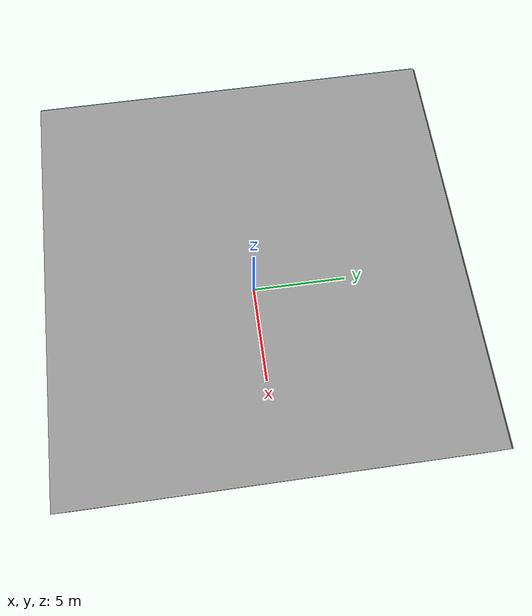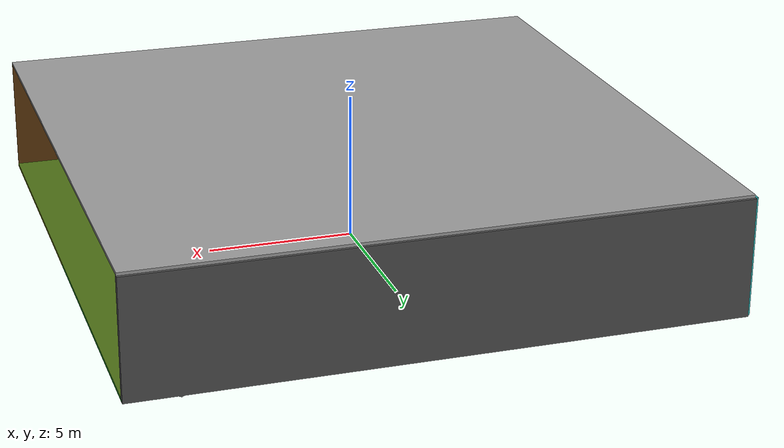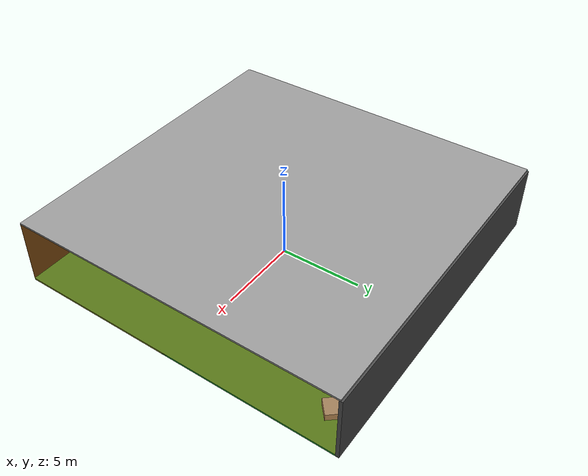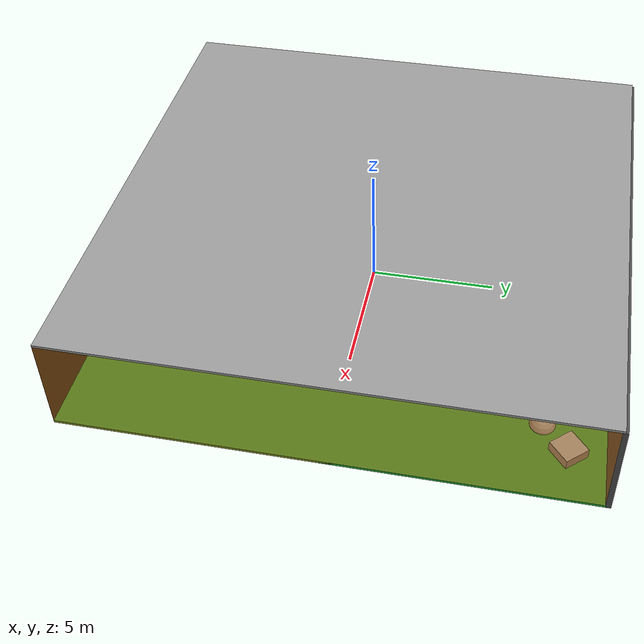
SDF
<sdf version="1.4">
 <world name="default">
  <physics type="ode">
   <max_step_size>0.001</max_step_size>
   <real_time_factor>1</real_time_factor>
   <real_time_update_rate>1000</real_time_update_rate>
   <gravity>0 0 -9.8</gravity>
  </physics>
  <scene><ambient>0.4 0.4 0.4 1</ambient><background>0.7 0.7 0.7 1</background><shadows>1</shadows></scene>
  <model name="Surrounding">
   <static>1</static>
   <link name="Ceiling">
    <collision name="Ceiling_Collision"><geometry><box><size>20 20 0.1</size></box></geometry></collision>
    <visual name="Ceiling_Visual">
     <geometry><box><size>20 20 0.1</size></box></geometry>
     <material>
      <script><uri>file://media/materials/scripts/gazebo.material</uri><name>Gazebo/Grey</name></script>
     </material>
    </visual>
    <pose>0 0 4.05 0 0 0</pose>
   </link>
   <link name="Wall_South">
    <collision name="Wall_South_Collision">
     <geometry><box><size>20 0 4</size></box></geometry>
     <pose>0 0 2 0 -0 0</pose>
    </collision>
    <visual name="Wall_South_Visual">
     <pose>0 0 2 0 -0 0</pose>
     <geometry><box><size>20 0 4</size></box></geometry>
     <material>
      <script><uri>file://media/materials/scripts/gazebo.material</uri><name>Gazebo/Black</name></script>
     </material>
    </visual>
    <velocity_decay><linear>0</linear><angular>0</angular></velocity_decay>
    <pose>0 -10 0 0 -0 0</pose>
   </link>
   <link name="Wall_East">
    <collision name="Wall_21_Collision">
     <geometry><box><size>20 0 4</size></box></geometry>
     <pose>0 0 2 0 -0 0</pose>
    </collision>
    <visual name="Wall_21_Visual">
     <pose>0 0 2 0 -0 0</pose>
     <geometry><box><size>20 0 4</size></box></geometry>
     <material>
      <script>
       <uri>file://media/materials/scripts/gazebo.material</uri>
       <name>Gazebo/OrangeTransparent</name>
      </script>
     </material>
    </visual>
    <velocity_decay><linear>0</linear><angular>0</angular></velocity_decay>
    <pose>10 0 0 0 -0 1.5708</pose>
   </link>
   <link name="Wall_North">
    <collision name="Wall_22_Collision">
     <geometry><box><size>20 0.2 4</size></box></geometry>
     <pose>0 0 2 0 -0 0</pose>
    </collision>
    <visual name="Wall_22_Visual">
     <pose>0 0 2 0 -0 0</pose>
     <geometry><box><size>20 0.2 4</size></box></geometry>
     <material>
      <script><uri>file://media/materials/scripts/gazebo.material</uri><name>Gazebo/Road</name></script>
     </material>
    </visual>
    <velocity_decay><linear>0</linear><angular>0</angular></velocity_decay>
    <pose>0 10 0 0 -0 0</pose>
   </link>
   <link name="Wall_West">
    <collision name="Wall_23_Collision">
     <geometry><box><size>20 0.2 4</size></box></geometry>
     <pose>0 0 2 0 -0 0</pose>
    </collision>
    <visual name="Wall_23_Visual">
     <pose>0 0 2 0 -0 0</pose>
     <geometry><box><size>20 0.2 4</size></box></geometry>
     <material>
      <script>
       <uri>file://media/materials/scripts/gazebo.material</uri>
       <name>Gazebo/TurquoiseGlowOutline</name>
      </script>
     </material>
    </visual>
    <velocity_decay><linear>0</linear><angular>0</angular></velocity_decay>
    <pose>-10 0 0 0 0 -1.5708</pose>
   </link>
   <link name="Ground_link">
    <collision name="collision">
     <pose>0 0 .05 0 -0 0</pose>
     <geometry><box><size>20 20 0.1</size></box></geometry>
    </collision>
    <visual name="visual">
     <pose>0 0 .05 0 -0 0</pose>
     <geometry><box><size>20 20 0.1</size></box></geometry>
     <material>
      <script><uri>file://media/materials/scripts/gazebo.material</uri><name>Gazebo/GreenGlow</name></script>
     </material>
    </visual>
   </link>
   <static>1</static>
  </model>
  <spherical_coordinates>
   <surface_model>EARTH_WGS84</surface_model>
   <latitude_deg>0</latitude_deg>
   <longitude_deg>0</longitude_deg>
   <elevation>0</elevation>
   <heading_deg>0</heading_deg>
  </spherical_coordinates>
  <light name="lightball_0" type="diffuse">
   <diffuse>0.8 0.8 0.8 1</diffuse>
   <specular>0.2 0.2 0.2 1</specular>
   <attenuation>
    <range>100</range>
    <constant>0.7</constant>
    <linear>0.01</linear>
    <quadratic>0.001</quadratic>
   </attenuation>
   <direction>-0.5 0.1 -0.9</direction>
   <pose>7.09282170126 1.10859728628 1.7228609295 0 0 0</pose>
  </light>
  <light name="lightball_1" type="diffuse">
   <diffuse>0.8 0.8 0.8 1</diffuse>
   <specular>0.2 0.2 0.2 1</specular>
   <attenuation>
    <range>100</range>
    <constant>0.7</constant>
    <linear>0.01</linear>
    <quadratic>0.001</quadratic>
   </attenuation>
   <direction>-0.5 0.1 -0.9</direction>
   <pose>3.57493034118 1.75824973219 0.648054832144 0 0 0</pose>
  </light>
  <light name="lightball_2" type="diffuse">
   <diffuse>0.8 0.8 0.8 1</diffuse>
   <specular>0.2 0.2 0.2 1</specular>
   <attenuation>
    <range>100</range>
    <constant>0.7</constant>
    <linear>0.01</linear>
    <quadratic>0.001</quadratic>
   </attenuation>
   <direction>-0.5 0.1 -0.9</direction>
   <pose>4.11919244327 9.38439095832 3.41573594292 0 0 0</pose>
  </light>
  <light name="lightball_3" type="diffuse">
   <diffuse>0.8 0.8 0.8 1</diffuse>
   <specular>0.2 0.2 0.2 1</specular>
   <attenuation>
    <range>100</range>
    <constant>0.7</constant>
    <linear>0.01</linear>
    <quadratic>0.001</quadratic>
   </attenuation>
   <direction>-0.5 0.1 -0.9</direction>
   <pose>6.57181688377 8.92708129963 2.31707915586 0 0 0</pose>
  </light>
  <light name="lightball_4" type="diffuse">
   <diffuse>0.8 0.8 0.8 1</diffuse>
   <specular>0.2 0.2 0.2 1</specular>
   <attenuation>
    <range>100</range>
    <constant>0.7</constant>
    <linear>0.01</linear>
    <quadratic>0.001</quadratic>
   </attenuation>
   <direction>-0.5 0.1 -0.9</direction>
   <pose>-2.25781192875 -3.29249006121 2.07471397981 0 0 0</pose>
  </light>
  <include><uri>model://table</uri><pose>-3.95169832243 -8.53798032691 0 0 0 2.83514053216</pose></include>
  <include><uri>model://table</uri><pose>-0.833957845726 8.0299488547 0 0 0 1.65243175593</pose></include>
  <include><uri>model://cabinet</uri><pose>5.51302921286 -5.20688477794 0 0 0 2.0361558552</pose></include>
  <include>
   <uri>model://textured_shapes</uri>
   <pose>6.88430240487 7.5442948438 0 0 0 2.28783221251</pose>
  </include>
 </world>
</sdf>

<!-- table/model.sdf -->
<sdf version="1.5">
  <model name="table">
    <static>true</static>
    <link name="link">
      <collision name="surface">
        <pose>0 0 1.0 0 0 0</pose>
        <geometry>
          <box>
            <size>1.5 0.8 0.03</size>
          </box>
        </geometry>
        <surface>
          <friction>
            <ode>
              <mu>0.6</mu>
              <mu2>0.6</mu2>
            </ode>
          </friction>
        </surface>
      </collision>
      <visual name="visual1">
        <pose>0 0 1.0 0 0 0</pose>
        <geometry>
          <box>
            <size>1.5 0.8 0.03</size>
          </box>
        </geometry>
        <material>
          <script>
            <uri>model://media/materials/scripts/gazebo.material</uri>
            <name>Gazebo/Wood</name>
          </script>
        </material>
      </visual>
      <collision name="front_left_leg">
        <pose>0.68 0.38 0.5 0 0 0</pose>
        <geometry>
          <cylinder>
            <radius>0.02</radius>
            <length>1.0</length>
          </cylinder>
        </geometry>
      </collision>
      <visual name="front_left_leg">
        <pose>0.68 0.38 0.5 0 0 0</pose>
        <geometry>
          <cylinder>
            <radius>0.02</radius>
            <length>1.0</length>
          </cylinder>
        </geometry>
        <material>
          <script>
            <uri>model://media/materials/scripts/gazebo.material</uri>
            <name>Gazebo/Grey</name>
          </script>
        </material>
      </visual>
      <collision name="front_right_leg">
        <pose>0.68 -0.38 0.5 0 0 0</pose>
        <geometry>
          <cylinder>
            <radius>0.02</radius>
            <length>1.0</length>
          </cylinder>
        </geometry>
      </collision>
      <visual name="front_right_leg">
        <pose>0.68 -0.38 0.5 0 0 0</pose>
        <geometry>
          <cylinder>
            <radius>0.02</radius>
            <length>1.0</length>
          </cylinder>
        </geometry>
        <material>
          <script>
            <uri>model://media/materials/scripts/gazebo.material</uri>
            <name>Gazebo/Grey</name>
          </script>
        </material>
      </visual>
      <collision name="back_right_leg">
        <pose>-0.68 -0.38 0.5 0 0 0</pose>
        <geometry>
          <cylinder>
            <radius>0.02</radius>
            <length>1.0</length>
          </cylinder>
        </geometry>
      </collision>
      <visual name="back_right_leg">
        <pose>-0.68 -0.38 0.5 0 0 0</pose>
        <geometry>
          <cylinder>
            <radius>0.02</radius>
            <length>1.0</length>
          </cylinder>
        </geometry>
        <material>
          <script>
            <uri>model://media/materials/scripts/gazebo.material</uri>
            <name>Gazebo/Grey</name>
          </script>
        </material>
      </visual>
      <collision name="back_left_leg">
        <pose>-0.68 0.38 0.5 0 0 0</pose>
        <geometry>
          <cylinder>
            <radius>0.02</radius>
            <length>1.0</length>
          </cylinder>
        </geometry>
      </collision>
      <visual name="back_left_leg">
        <pose>-0.68 0.38 0.5 0 0 0</pose>
        <geometry>
          <cylinder>
            <radius>0.02</radius>
            <length>1.0</length>
          </cylinder>
        </geometry>
        <material>
          <script>
            <uri>model://media/materials/scripts/gazebo.material</uri>
            <name>Gazebo/Grey</name>
          </script>
        </material>
      </visual>
    </link>
  </model>
</sdf>

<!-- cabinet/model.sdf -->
<sdf version="1.5">
  <model name="cabinet">
    <static>true</static>
    <link name="cabinet_bottom_plate">
      <inertial>
        <pose>0 0 -1 0 0 0</pose>
        <inertia>
          <ixx>2.050000</ixx>
          <ixy>0</ixy>
          <ixz>0</ixz>
          <iyy>2.050000</iyy>
          <iyz>0</iyz>
          <izz>2.050000</izz>
        </inertia>
        <mass>25.000000</mass>
      </inertial>
      <collision name="cabinet_bottom_plate_geom">
        <pose>0 0 0.010000 0 0 0</pose>
        <geometry>
          <box>
            <size>0.450000 0.450000 0.020000</size>
          </box>
        </geometry>
      </collision>
      <visual name="cabinet_bottom_plate_geom_visual">
        <pose>0 0 0.010000 0 0 0</pose>
        <geometry>
          <box>
            <size>0.450000 0.450000 0.020000</size>
          </box>
        </geometry>
        <material>
          <script>
            <uri>model://media/materials/scripts/gazebo.material</uri>
            <name>Gazebo/Wood</name>
          </script>
        </material>
      </visual>
      <collision name="cabinet_bottom_plate_geom_cabinet_back_plate">
        <pose>0.235000 0 0.510000 0 0 0</pose>
        <geometry>
          <box>
            <size>0.020000 0.450000 1.020000</size>
          </box>
        </geometry>
      </collision>
      <visual name="cabinet_bottom_plate_geom_cabinet_back_plate_visual">
        <pose>0.235000 0 0.510000 0 0 0</pose>
        <geometry>
          <box>
            <size>0.020000 0.450000 1.020000</size>
          </box>
        </geometry>
        <material>
          <script>
            <uri>model://media/materials/scripts/gazebo.material</uri>
            <name>Gazebo/Wood</name>
          </script>
        </material>
      </visual>
      <collision name="cabinet_bottom_plate_geom_cabinet_left_plate">
        <pose>0 0.235000 0.510000 0 0 0</pose>
        <geometry>
          <box>
            <size>0.450000 0.020000 1.020000</size>
          </box>
        </geometry>
      </collision>
      <visual name="cabinet_bottom_plate_geom_cabinet_left_plate_visual">
        <pose>0 0.235000 0.510000 0 0 0</pose>
        <geometry>
          <box>
            <size>0.450000 0.020000 1.020000</size>
          </box>
        </geometry>
        <material>
          <script>
            <uri>model://media/materials/scripts/gazebo.material</uri>
            <name>Gazebo/Wood</name>
          </script>
        </material>
      </visual>
      <collision name="cabinet_bottom_plate_geom_cabinet_middle_plate">
        <pose>0 0 0.510000 0 0 0</pose>
        <geometry>
          <box>
            <size>0.450000 0.450000 0.020000</size>
          </box>
        </geometry>
      </collision>
      <visual name="cabinet_bottom_plate_geom_cabinet_middle_plate_visual">
        <pose>0 0 0.510000 0 0 0</pose>
        <geometry>
          <box>
            <size>0.450000 0.450000 0.020000</size>
          </box>
        </geometry>
        <material>
          <script>
            <uri>model://media/materials/scripts/gazebo.material</uri>
            <name>Gazebo/Wood</name>
          </script>
        </material>
      </visual>
      <collision name="cabinet_bottom_plate_geom_cabinet_right_plate">
        <pose>0 -0.235000 0.510000 0 0 0</pose>
        <geometry>
          <box>
            <size>0.450000 0.020000 1.020000</size>
          </box>
        </geometry>
      </collision>
      <visual name="cabinet_bottom_plate_geom_cabinet_right_plate_visual">
        <pose>0 -0.235000 0.510000 0 0 0</pose>
        <geometry>
          <box>
            <size>0.450000 0.020000 1.020000</size>
          </box>
        </geometry>
        <material>
          <script>
            <uri>model://media/materials/scripts/gazebo.material</uri>
            <name>Gazebo/Wood</name>
          </script>
        </material>
      </visual>
      <collision name="cabinet_bottom_plate_geom_cabinet_top_plate">
        <pose>0 0 1.010000 0 0 0</pose>
        <geometry>
          <box>
            <size>0.450000 0.450000 0.020000</size>
          </box>
        </geometry>
      </collision>
      <visual name="cabinet_bottom_plate_geom_cabinet_top_plate_visual">
        <pose>0 0 1.010000 0 0 0</pose>
        <geometry>
          <box>
            <size>0.450000 0.450000 0.020000</size>
          </box>
        </geometry>
        <material>
          <script>
            <uri>model://media/materials/scripts/gazebo.material</uri>
            <name>Gazebo/Wood</name>
          </script>
        </material>
      </visual>
    </link>
  </model>
</sdf>

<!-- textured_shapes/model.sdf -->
<sdf version="1.6">
  <model name="textured_shapes">
    <pose>0 0 0.5 0 0 0</pose>
    <link name="box">
      <pose>0 -1.5 0 0 0 0</pose>
      <collision name="collision">
        <geometry>
          <box>
            <size>1 1 1</size>
          </box>
        </geometry>
      </collision>
      <visual name="visual">
        <geometry>
          <box>
            <size>1 1 1</size>
          </box>
        </geometry>
        <material>
          <script>
            <uri>model://../model_source/models/textured_shapes/materials/scripts</uri>
            <uri>model://../model_source/models/textured_shapes/materials/textures</uri>
            <name>TexturedShape/Squares</name>
          </script>
        </material>
      </visual>
    </link>
    <link name="sphere">
      <collision name="collision">
        <geometry>
          <sphere>
            <radius>0.5</radius>
          </sphere>
        </geometry>
      </collision>
      <visual name="visual">
        <geometry>
          <sphere>
            <radius>0.5</radius>
          </sphere>
        </geometry>
        <material>
          <script>
            <uri>model://../model_source/models/textured_shapes/materials/scripts</uri>
            <uri>model://../model_source/models/textured_shapes/materials/textures</uri>
            <name>TexturedShape/Squares</name>
          </script>
        </material>
      </visual>
    </link>
    <link name="cylinder">
      <pose>0 1.5 0 0 0 0</pose>
      <collision name="collision">
        <geometry>
          <cylinder>
            <radius>0.5</radius>
            <length>1</length>
          </cylinder>
        </geometry>
      </collision>
      <visual name="visual">
        <geometry>
          <cylinder>
            <radius>0.5</radius>
            <length>1</length>
          </cylinder>
        </geometry>
        <material>
          <script>
            <uri>model://../model_source/models/textured_shapes/materials/scripts</uri>
            <uri>model://../model_source/models/textured_shapes/materials/textures</uri>
            <name>TexturedShape/Squares</name>
          </script>
        </material>
      </visual>
    </link>
  </model>
</sdf>
